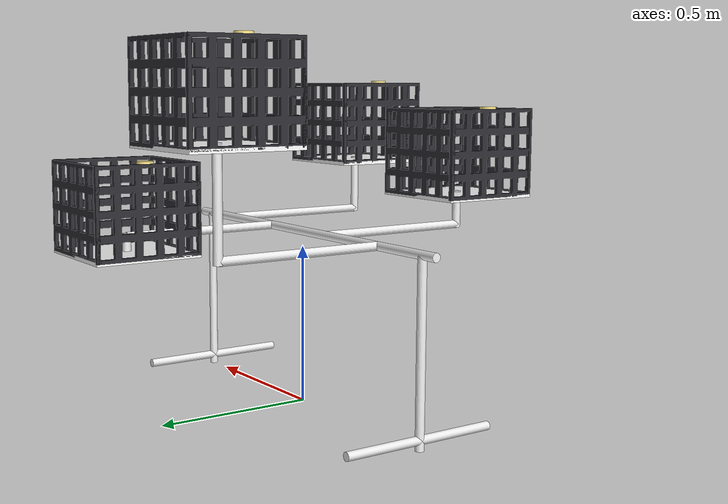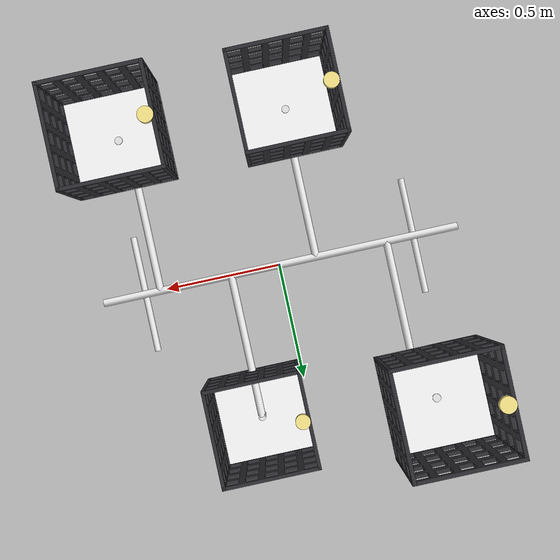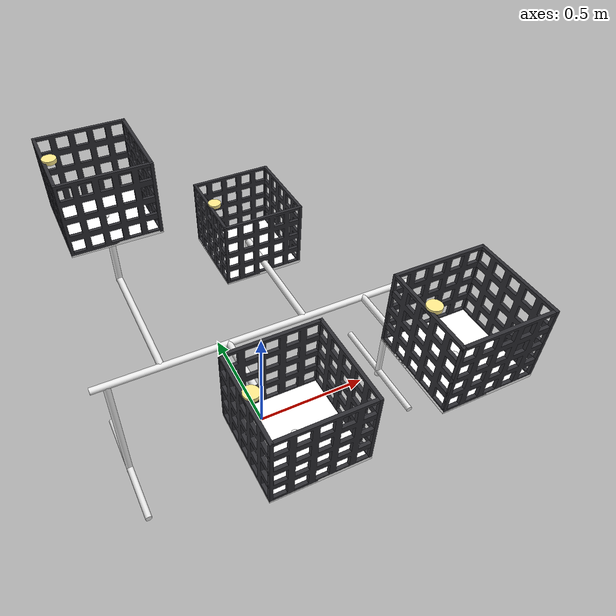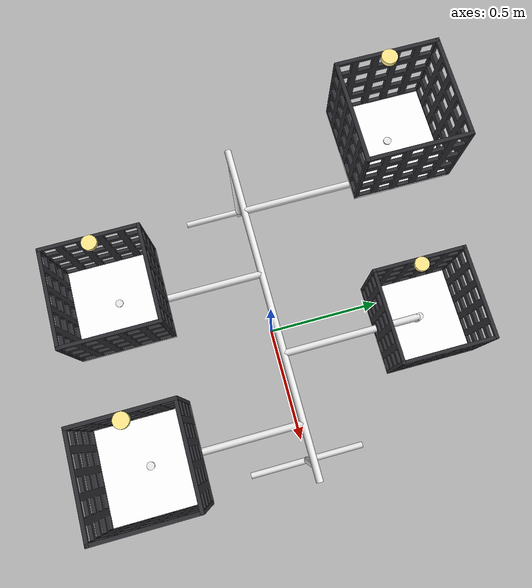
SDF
<?xml version="1.0"?>
<sdf version="1.9">
  <model name="robosub_bins">
    <static>true</static>
    <plugin filename="gz-sim-label-system" name="gz::sim::systems::Label">
      <label>14</label>
    </plugin>
    <link name="spine">
      <pose>0 0 0.55 0 1.5708 0</pose>
      <inertial>
        <pose>0 0 0 0 0 0</pose>
        <mass>1</mass>
        <inertia>
          <ixx>0.140878</ixx><ixy>0</ixy><ixz>0</ixz>
          <iyy>0.140878</iyy><iyz>0</iyz>
          <izz>8.8445e-05</izz>
        </inertia>
      </inertial>
      <visual name="spine_visual">
        <pose>0 0 0 0 0 0</pose>
        <geometry><cylinder><radius>0.0133</radius><length>1.3</length></cylinder></geometry>
        <material>
          <ambient>0.92 0.92 0.92 1</ambient>
          <diffuse>0.92 0.92 0.92 1</diffuse>
          <specular>0.55 0.55 0.55 1</specular>
          <emissive>0.258 0.258 0.258 1</emissive>
          <pbr>
            <metal>
              <albedo_map>model://robosub_textures/albedo_pvc.png</albedo_map>
              <metalness>0.0</metalness>
              <roughness_map>model://robosub_textures/rough_pvc.png</roughness_map>
              <normal_map>model://robosub_textures/norm_pvc.png</normal_map>
            </metal>
          </pbr>
        </material>
      </visual>
      <collision name="spine_collision">
        <pose>0 0 0 0 0 0</pose>
        <geometry><cylinder><radius>0.0133</radius><length>1.3</length></cylinder></geometry>
      </collision>
    </link>
    <link name="foot_riser_0">
      <pose>-0.590909 0 0.275 0 0 0</pose>
      <inertial>
        <pose>0 0 0 0 0 0</pose>
        <mass>1</mass>
        <inertia>
          <ixx>0.0252526</ixx><ixy>0</ixy><ixz>0</ixz>
          <iyy>0.0252526</iyy><iyz>0</iyz>
          <izz>8.8445e-05</izz>
        </inertia>
      </inertial>
      <visual name="foot_riser_0_visual">
        <pose>0 0 0 0 0 0</pose>
        <geometry><cylinder><radius>0.0133</radius><length>0.55</length></cylinder></geometry>
        <material>
          <ambient>0.92 0.92 0.92 1</ambient>
          <diffuse>0.92 0.92 0.92 1</diffuse>
          <specular>0.55 0.55 0.55 1</specular>
          <emissive>0.258 0.258 0.258 1</emissive>
          <pbr>
            <metal>
              <albedo_map>model://robosub_textures/albedo_pvc.png</albedo_map>
              <metalness>0.0</metalness>
              <roughness_map>model://robosub_textures/rough_pvc.png</roughness_map>
              <normal_map>model://robosub_textures/norm_pvc.png</normal_map>
            </metal>
          </pbr>
        </material>
      </visual>
      <collision name="foot_riser_0_collision">
        <pose>0 0 0 0 0 0</pose>
        <geometry><cylinder><radius>0.0133</radius><length>0.55</length></cylinder></geometry>
      </collision>
    </link>
    <link name="foot_0">
      <pose>-0.590909 0 0.03 1.5708 0 0</pose>
      <inertial>
        <pose>0 0 0 0 0 0</pose>
        <mass>1</mass>
        <inertia>
          <ixx>0.0208776</ixx><ixy>0</ixy><ixz>0</ixz>
          <iyy>0.0208776</iyy><iyz>0</iyz>
          <izz>8.8445e-05</izz>
        </inertia>
      </inertial>
      <visual name="foot_0_visual">
        <pose>0 0 0 0 0 0</pose>
        <geometry><cylinder><radius>0.0133</radius><length>0.5</length></cylinder></geometry>
        <material>
          <ambient>0.92 0.92 0.92 1</ambient>
          <diffuse>0.92 0.92 0.92 1</diffuse>
          <specular>0.55 0.55 0.55 1</specular>
          <emissive>0.258 0.258 0.258 1</emissive>
          <pbr>
            <metal>
              <albedo_map>model://robosub_textures/albedo_pvc.png</albedo_map>
              <metalness>0.0</metalness>
              <roughness_map>model://robosub_textures/rough_pvc.png</roughness_map>
              <normal_map>model://robosub_textures/norm_pvc.png</normal_map>
            </metal>
          </pbr>
        </material>
      </visual>
      <collision name="foot_0_collision">
        <pose>0 0 0 0 0 0</pose>
        <geometry><cylinder><radius>0.0133</radius><length>0.5</length></cylinder></geometry>
      </collision>
    </link>
    <link name="foot_riser_1">
      <pose>0.590909 0 0.275 0 0 0</pose>
      <inertial>
        <pose>0 0 0 0 0 0</pose>
        <mass>1</mass>
        <inertia>
          <ixx>0.0252526</ixx><ixy>0</ixy><ixz>0</ixz>
          <iyy>0.0252526</iyy><iyz>0</iyz>
          <izz>8.8445e-05</izz>
        </inertia>
      </inertial>
      <visual name="foot_riser_1_visual">
        <pose>0 0 0 0 0 0</pose>
        <geometry><cylinder><radius>0.0133</radius><length>0.55</length></cylinder></geometry>
        <material>
          <ambient>0.92 0.92 0.92 1</ambient>
          <diffuse>0.92 0.92 0.92 1</diffuse>
          <specular>0.55 0.55 0.55 1</specular>
          <emissive>0.258 0.258 0.258 1</emissive>
          <pbr>
            <metal>
              <albedo_map>model://robosub_textures/albedo_pvc.png</albedo_map>
              <metalness>0.0</metalness>
              <roughness_map>model://robosub_textures/rough_pvc.png</roughness_map>
              <normal_map>model://robosub_textures/norm_pvc.png</normal_map>
            </metal>
          </pbr>
        </material>
      </visual>
      <collision name="foot_riser_1_collision">
        <pose>0 0 0 0 0 0</pose>
        <geometry><cylinder><radius>0.0133</radius><length>0.55</length></cylinder></geometry>
      </collision>
    </link>
    <link name="foot_1">
      <pose>0.590909 0 0.03 1.5708 0 0</pose>
      <inertial>
        <pose>0 0 0 0 0 0</pose>
        <mass>1</mass>
        <inertia>
          <ixx>0.0208776</ixx><ixy>0</ixy><ixz>0</ixz>
          <iyy>0.0208776</iyy><iyz>0</iyz>
          <izz>8.8445e-05</izz>
        </inertia>
      </inertial>
      <visual name="foot_1_visual">
        <pose>0 0 0 0 0 0</pose>
        <geometry><cylinder><radius>0.0133</radius><length>0.5</length></cylinder></geometry>
        <material>
          <ambient>0.92 0.92 0.92 1</ambient>
          <diffuse>0.92 0.92 0.92 1</diffuse>
          <specular>0.55 0.55 0.55 1</specular>
          <emissive>0.258 0.258 0.258 1</emissive>
          <pbr>
            <metal>
              <albedo_map>model://robosub_textures/albedo_pvc.png</albedo_map>
              <metalness>0.0</metalness>
              <roughness_map>model://robosub_textures/rough_pvc.png</roughness_map>
              <normal_map>model://robosub_textures/norm_pvc.png</normal_map>
            </metal>
          </pbr>
        </material>
      </visual>
      <collision name="foot_1_collision">
        <pose>0 0 0 0 0 0</pose>
        <geometry><cylinder><radius>0.0133</radius><length>0.5</length></cylinder></geometry>
      </collision>
    </link>
    <link name="arm_sr_a">
      <pose>-0.39 0.26 0.55 1.5708 0 0</pose>
      <inertial>
        <pose>0 0 0 0 0 0</pose>
        <mass>1</mass>
        <inertia>
          <ixx>0.0225776</ixx><ixy>0</ixy><ixz>0</ixz>
          <iyy>0.0225776</iyy><iyz>0</iyz>
          <izz>8.8445e-05</izz>
        </inertia>
      </inertial>
      <visual name="arm_sr_a_visual">
        <pose>0 0 0 0 0 0</pose>
        <geometry><cylinder><radius>0.0133</radius><length>0.52</length></cylinder></geometry>
        <material>
          <ambient>0.92 0.92 0.92 1</ambient>
          <diffuse>0.92 0.92 0.92 1</diffuse>
          <specular>0.55 0.55 0.55 1</specular>
          <emissive>0.258 0.258 0.258 1</emissive>
          <pbr>
            <metal>
              <albedo_map>model://robosub_textures/albedo_pvc.png</albedo_map>
              <metalness>0.0</metalness>
              <roughness_map>model://robosub_textures/rough_pvc.png</roughness_map>
              <normal_map>model://robosub_textures/norm_pvc.png</normal_map>
            </metal>
          </pbr>
        </material>
      </visual>
      <collision name="arm_sr_a_collision">
        <pose>0 0 0 0 0 0</pose>
        <geometry><cylinder><radius>0.0133</radius><length>0.52</length></cylinder></geometry>
      </collision>
    </link>
    <link name="riser_sr_a">
      <pose>-0.39 0.52 0.7 0 0 0</pose>
      <inertial>
        <pose>0 0 0 0 0 0</pose>
        <mass>1</mass>
        <inertia>
          <ixx>0.00857756</ixx><ixy>0</ixy><ixz>0</ixz>
          <iyy>0.00857756</iyy><iyz>0</iyz>
          <izz>8.8445e-05</izz>
        </inertia>
      </inertial>
      <visual name="riser_sr_a_visual">
        <pose>0 0 0 0 0 0</pose>
        <geometry><cylinder><radius>0.0133</radius><length>0.32</length></cylinder></geometry>
        <material>
          <ambient>0.92 0.92 0.92 1</ambient>
          <diffuse>0.92 0.92 0.92 1</diffuse>
          <specular>0.55 0.55 0.55 1</specular>
          <emissive>0.258 0.258 0.258 1</emissive>
          <pbr>
            <metal>
              <albedo_map>model://robosub_textures/albedo_pvc.png</albedo_map>
              <metalness>0.0</metalness>
              <roughness_map>model://robosub_textures/rough_pvc.png</roughness_map>
              <normal_map>model://robosub_textures/norm_pvc.png</normal_map>
            </metal>
          </pbr>
        </material>
      </visual>
      <collision name="riser_sr_a_collision">
        <pose>0 0 0 0 0 0</pose>
        <geometry><cylinder><radius>0.0133</radius><length>0.32</length></cylinder></geometry>
      </collision>
    </link>
    <link name="crate_sr_a_floor">
      <pose>-0.39 0.52 0.85 0 0 0</pose>
      <inertial>
        <pose>0 0 0 0 0 0</pose>
        <mass>1</mass>
        <inertia>
          <ixx>0.00936408</ixx><ixy>0</ixy><ixz>0</ixz>
          <iyy>0.00936408</iyy><iyz>0</iyz>
          <izz>0.0187042</izz>
        </inertia>
      </inertial>
      <visual name="crate_sr_a_floor_visual">
        <pose>0 0 0 0 0 0</pose>
        <geometry><box><size>0.335 0.335 0.012</size></box></geometry>
        <material>
          <ambient>1 1 1 1</ambient>
          <diffuse>1 1 1 1</diffuse>
          <specular>0.06 0.06 0.06 1</specular>
          <emissive>0.1 0.1 0.1 1</emissive>
          <pbr>
            <metal>
              <albedo_map>model://robosub_textures/role_fire.png</albedo_map>
              <metalness>0.0</metalness>
              <roughness>0.55</roughness>
            </metal>
          </pbr>
        </material>
      </visual>
      <collision name="crate_sr_a_floor_collision">
        <pose>0 0 0 0 0 0</pose>
        <geometry><box><size>0.335 0.335 0.012</size></box></geometry>
      </collision>
    </link>
    <link name="crate_sr_a_xp">
      <pose>-0.2285 0.52 0.99 0 0 0</pose>
      <inertial>
        <pose>0 0 0 0 0 0</pose>
        <mass>0.5</mass>
        <inertia>
          <ixx>0.00794271</ixx><ixy>0</ixy><ixz>0</ixz>
          <iyy>0.00327267</iyy><iyz>0</iyz>
          <izz>0.00468204</izz>
        </inertia>
      </inertial>
      <visual name="crate_sr_a_xp_visual">
        <pose>0 0 0 0 0 0</pose>
        <geometry><mesh><uri>model://robosub_meshes/meshes/crate_wall.obj</uri></mesh></geometry>
        <material>
          <ambient>0.18 0.18 0.2 1</ambient>
          <diffuse>0.18 0.18 0.2 1</diffuse>
          <specular>0.14 0.14 0.14 1</specular>
          <emissive>0.04 0.04 0.04 1</emissive>
          <pbr>
            <metal>
              <albedo_map>model://robosub_textures/albedo_plastic.png</albedo_map>
              <metalness>0.0</metalness>
              <roughness_map>model://robosub_textures/rough_plastic.png</roughness_map>
              <normal_map>model://robosub_textures/norm_plastic.png</normal_map>
              <double_sided>true</double_sided>
            </metal>
          </pbr>
        </material>
      </visual>
      <collision name="crate_sr_a_xp_collision">
        <pose>0 0 0 0 0 0</pose>
        <geometry><box><size>0.012 0.335 0.28</size></box></geometry>
      </collision>
    </link>
    <link name="crate_sr_a_xn">
      <pose>-0.5515 0.52 0.99 0 0 0</pose>
      <inertial>
        <pose>0 0 0 0 0 0</pose>
        <mass>0.5</mass>
        <inertia>
          <ixx>0.00794271</ixx><ixy>0</ixy><ixz>0</ixz>
          <iyy>0.00327267</iyy><iyz>0</iyz>
          <izz>0.00468204</izz>
        </inertia>
      </inertial>
      <visual name="crate_sr_a_xn_visual">
        <pose>0 0 0 0 0 0</pose>
        <geometry><mesh><uri>model://robosub_meshes/meshes/crate_wall.obj</uri></mesh></geometry>
        <material>
          <ambient>0.18 0.18 0.2 1</ambient>
          <diffuse>0.18 0.18 0.2 1</diffuse>
          <specular>0.14 0.14 0.14 1</specular>
          <emissive>0.04 0.04 0.04 1</emissive>
          <pbr>
            <metal>
              <albedo_map>model://robosub_textures/albedo_plastic.png</albedo_map>
              <metalness>0.0</metalness>
              <roughness_map>model://robosub_textures/rough_plastic.png</roughness_map>
              <normal_map>model://robosub_textures/norm_plastic.png</normal_map>
              <double_sided>true</double_sided>
            </metal>
          </pbr>
        </material>
      </visual>
      <collision name="crate_sr_a_xn_collision">
        <pose>0 0 0 0 0 0</pose>
        <geometry><box><size>0.012 0.335 0.28</size></box></geometry>
      </collision>
    </link>
    <link name="crate_sr_a_yp">
      <pose>-0.39 0.6815 0.99 0 0 1.5708</pose>
      <inertial>
        <pose>0 0 0 0 0 0</pose>
        <mass>0.5</mass>
        <inertia>
          <ixx>0.00327267</ixx><ixy>0</ixy><ixz>0</ixz>
          <iyy>0.00794271</iyy><iyz>0</iyz>
          <izz>0.00468204</izz>
        </inertia>
      </inertial>
      <visual name="crate_sr_a_yp_visual">
        <pose>0 0 0 0 0 0</pose>
        <geometry><mesh><uri>model://robosub_meshes/meshes/crate_wall.obj</uri></mesh></geometry>
        <material>
          <ambient>0.18 0.18 0.2 1</ambient>
          <diffuse>0.18 0.18 0.2 1</diffuse>
          <specular>0.14 0.14 0.14 1</specular>
          <emissive>0.04 0.04 0.04 1</emissive>
          <pbr>
            <metal>
              <albedo_map>model://robosub_textures/albedo_plastic.png</albedo_map>
              <metalness>0.0</metalness>
              <roughness_map>model://robosub_textures/rough_plastic.png</roughness_map>
              <normal_map>model://robosub_textures/norm_plastic.png</normal_map>
              <double_sided>true</double_sided>
            </metal>
          </pbr>
        </material>
      </visual>
      <collision name="crate_sr_a_yp_collision">
        <pose>0 0 0 0 0 0</pose>
        <geometry><box><size>0.335 0.012 0.28</size></box></geometry>
      </collision>
    </link>
    <link name="crate_sr_a_yn">
      <pose>-0.39 0.3585 0.99 0 0 1.5708</pose>
      <inertial>
        <pose>0 0 0 0 0 0</pose>
        <mass>0.5</mass>
        <inertia>
          <ixx>0.00327267</ixx><ixy>0</ixy><ixz>0</ixz>
          <iyy>0.00794271</iyy><iyz>0</iyz>
          <izz>0.00468204</izz>
        </inertia>
      </inertial>
      <visual name="crate_sr_a_yn_visual">
        <pose>0 0 0 0 0 0</pose>
        <geometry><mesh><uri>model://robosub_meshes/meshes/crate_wall.obj</uri></mesh></geometry>
        <material>
          <ambient>0.18 0.18 0.2 1</ambient>
          <diffuse>0.18 0.18 0.2 1</diffuse>
          <specular>0.14 0.14 0.14 1</specular>
          <emissive>0.04 0.04 0.04 1</emissive>
          <pbr>
            <metal>
              <albedo_map>model://robosub_textures/albedo_plastic.png</albedo_map>
              <metalness>0.0</metalness>
              <roughness_map>model://robosub_textures/rough_plastic.png</roughness_map>
              <normal_map>model://robosub_textures/norm_plastic.png</normal_map>
              <double_sided>true</double_sided>
            </metal>
          </pbr>
        </material>
      </visual>
      <collision name="crate_sr_a_yn_collision">
        <pose>0 0 0 0 0 0</pose>
        <geometry><box><size>0.335 0.012 0.28</size></box></geometry>
      </collision>
    </link>
    <link name="light_sr_a">
      <pose>-0.5309 0.52 1.13 0 0 0</pose>
      <inertial>
        <pose>0 0 0 0 0 0</pose>
        <mass>0.05</mass>
        <inertia>
          <ixx>8.79883e-06</ixx><ixy>0</ixy><ixz>0</ixz>
          <iyy>8.79883e-06</iyy><iyz>0</iyz>
          <izz>1.59643e-05</izz>
        </inertia>
      </inertial>
      <visual name="light_sr_a_visual">
        <pose>0 0 0 0 0 0</pose>
        <geometry><cylinder><radius>0.02527</radius><length>0.014</length></cylinder></geometry>
        <material>
          <ambient>1 0.92 0.55 1</ambient>
          <diffuse>1 0.92 0.55 1</diffuse>
          <specular>0.2 0.2 0.2 1</specular>
          <emissive>0.85 0.782 0.4675 1</emissive>
        </material>
      </visual>
    </link>
    <link name="arm_rescue_a">
      <pose>-0.13 -0.26 0.55 1.5708 0 0</pose>
      <inertial>
        <pose>0 0 0 0 0 0</pose>
        <mass>1</mass>
        <inertia>
          <ixx>0.0225776</ixx><ixy>0</ixy><ixz>0</ixz>
          <iyy>0.0225776</iyy><iyz>0</iyz>
          <izz>8.8445e-05</izz>
        </inertia>
      </inertial>
      <visual name="arm_rescue_a_visual">
        <pose>0 0 0 0 0 0</pose>
        <geometry><cylinder><radius>0.0133</radius><length>0.52</length></cylinder></geometry>
        <material>
          <ambient>0.92 0.92 0.92 1</ambient>
          <diffuse>0.92 0.92 0.92 1</diffuse>
          <specular>0.55 0.55 0.55 1</specular>
          <emissive>0.258 0.258 0.258 1</emissive>
          <pbr>
            <metal>
              <albedo_map>model://robosub_textures/albedo_pvc.png</albedo_map>
              <metalness>0.0</metalness>
              <roughness_map>model://robosub_textures/rough_pvc.png</roughness_map>
              <normal_map>model://robosub_textures/norm_pvc.png</normal_map>
            </metal>
          </pbr>
        </material>
      </visual>
      <collision name="arm_rescue_a_collision">
        <pose>0 0 0 0 0 0</pose>
        <geometry><cylinder><radius>0.0133</radius><length>0.52</length></cylinder></geometry>
      </collision>
    </link>
    <link name="riser_rescue_a">
      <pose>-0.13 -0.52 0.6 0 0 0</pose>
      <inertial>
        <pose>0 0 0 0 0 0</pose>
        <mass>1</mass>
        <inertia>
          <ixx>0.00124422</ixx><ixy>0</ixy><ixz>0</ixz>
          <iyy>0.00124422</iyy><iyz>0</iyz>
          <izz>8.8445e-05</izz>
        </inertia>
      </inertial>
      <visual name="riser_rescue_a_visual">
        <pose>0 0 0 0 0 0</pose>
        <geometry><cylinder><radius>0.0133</radius><length>0.12</length></cylinder></geometry>
        <material>
          <ambient>0.92 0.92 0.92 1</ambient>
          <diffuse>0.92 0.92 0.92 1</diffuse>
          <specular>0.55 0.55 0.55 1</specular>
          <emissive>0.258 0.258 0.258 1</emissive>
          <pbr>
            <metal>
              <albedo_map>model://robosub_textures/albedo_pvc.png</albedo_map>
              <metalness>0.0</metalness>
              <roughness_map>model://robosub_textures/rough_pvc.png</roughness_map>
              <normal_map>model://robosub_textures/norm_pvc.png</normal_map>
            </metal>
          </pbr>
        </material>
      </visual>
      <collision name="riser_rescue_a_collision">
        <pose>0 0 0 0 0 0</pose>
        <geometry><cylinder><radius>0.0133</radius><length>0.12</length></cylinder></geometry>
      </collision>
    </link>
    <link name="crate_rescue_a_floor">
      <pose>-0.13 -0.52 0.65 0 0 0</pose>
      <inertial>
        <pose>0 0 0 0 0 0</pose>
        <mass>1</mass>
        <inertia>
          <ixx>0.00936408</ixx><ixy>0</ixy><ixz>0</ixz>
          <iyy>0.00936408</iyy><iyz>0</iyz>
          <izz>0.0187042</izz>
        </inertia>
      </inertial>
      <visual name="crate_rescue_a_floor_visual">
        <pose>0 0 0 0 0 0</pose>
        <geometry><box><size>0.335 0.335 0.012</size></box></geometry>
        <material>
          <ambient>1 1 1 1</ambient>
          <diffuse>1 1 1 1</diffuse>
          <specular>0.06 0.06 0.06 1</specular>
          <emissive>0.1 0.1 0.1 1</emissive>
          <pbr>
            <metal>
              <albedo_map>model://robosub_textures/role_droplet.png</albedo_map>
              <metalness>0.0</metalness>
              <roughness>0.55</roughness>
            </metal>
          </pbr>
        </material>
      </visual>
      <collision name="crate_rescue_a_floor_collision">
        <pose>0 0 0 0 0 0</pose>
        <geometry><box><size>0.335 0.335 0.012</size></box></geometry>
      </collision>
    </link>
    <link name="crate_rescue_a_xp">
      <pose>0.0315 -0.52 0.79 0 0 0</pose>
      <inertial>
        <pose>0 0 0 0 0 0</pose>
        <mass>0.5</mass>
        <inertia>
          <ixx>0.00794271</ixx><ixy>0</ixy><ixz>0</ixz>
          <iyy>0.00327267</iyy><iyz>0</iyz>
          <izz>0.00468204</izz>
        </inertia>
      </inertial>
      <visual name="crate_rescue_a_xp_visual">
        <pose>0 0 0 0 0 0</pose>
        <geometry><mesh><uri>model://robosub_meshes/meshes/crate_wall.obj</uri></mesh></geometry>
        <material>
          <ambient>0.18 0.18 0.2 1</ambient>
          <diffuse>0.18 0.18 0.2 1</diffuse>
          <specular>0.14 0.14 0.14 1</specular>
          <emissive>0.04 0.04 0.04 1</emissive>
          <pbr>
            <metal>
              <albedo_map>model://robosub_textures/albedo_plastic.png</albedo_map>
              <metalness>0.0</metalness>
              <roughness_map>model://robosub_textures/rough_plastic.png</roughness_map>
              <normal_map>model://robosub_textures/norm_plastic.png</normal_map>
              <double_sided>true</double_sided>
            </metal>
          </pbr>
        </material>
      </visual>
      <collision name="crate_rescue_a_xp_collision">
        <pose>0 0 0 0 0 0</pose>
        <geometry><box><size>0.012 0.335 0.28</size></box></geometry>
      </collision>
    </link>
    <link name="crate_rescue_a_xn">
      <pose>-0.2915 -0.52 0.79 0 0 0</pose>
      <inertial>
        <pose>0 0 0 0 0 0</pose>
        <mass>0.5</mass>
        <inertia>
          <ixx>0.00794271</ixx><ixy>0</ixy><ixz>0</ixz>
          <iyy>0.00327267</iyy><iyz>0</iyz>
          <izz>0.00468204</izz>
        </inertia>
      </inertial>
      <visual name="crate_rescue_a_xn_visual">
        <pose>0 0 0 0 0 0</pose>
        <geometry><mesh><uri>model://robosub_meshes/meshes/crate_wall.obj</uri></mesh></geometry>
        <material>
          <ambient>0.18 0.18 0.2 1</ambient>
          <diffuse>0.18 0.18 0.2 1</diffuse>
          <specular>0.14 0.14 0.14 1</specular>
          <emissive>0.04 0.04 0.04 1</emissive>
          <pbr>
            <metal>
              <albedo_map>model://robosub_textures/albedo_plastic.png</albedo_map>
              <metalness>0.0</metalness>
              <roughness_map>model://robosub_textures/rough_plastic.png</roughness_map>
              <normal_map>model://robosub_textures/norm_plastic.png</normal_map>
              <double_sided>true</double_sided>
            </metal>
          </pbr>
        </material>
      </visual>
      <collision name="crate_rescue_a_xn_collision">
        <pose>0 0 0 0 0 0</pose>
        <geometry><box><size>0.012 0.335 0.28</size></box></geometry>
      </collision>
    </link>
    <link name="crate_rescue_a_yp">
      <pose>-0.13 -0.3585 0.79 0 0 1.5708</pose>
      <inertial>
        <pose>0 0 0 0 0 0</pose>
        <mass>0.5</mass>
        <inertia>
          <ixx>0.00327267</ixx><ixy>0</ixy><ixz>0</ixz>
          <iyy>0.00794271</iyy><iyz>0</iyz>
          <izz>0.00468204</izz>
        </inertia>
      </inertial>
      <visual name="crate_rescue_a_yp_visual">
        <pose>0 0 0 0 0 0</pose>
        <geometry><mesh><uri>model://robosub_meshes/meshes/crate_wall.obj</uri></mesh></geometry>
        <material>
          <ambient>0.18 0.18 0.2 1</ambient>
          <diffuse>0.18 0.18 0.2 1</diffuse>
          <specular>0.14 0.14 0.14 1</specular>
          <emissive>0.04 0.04 0.04 1</emissive>
          <pbr>
            <metal>
              <albedo_map>model://robosub_textures/albedo_plastic.png</albedo_map>
              <metalness>0.0</metalness>
              <roughness_map>model://robosub_textures/rough_plastic.png</roughness_map>
              <normal_map>model://robosub_textures/norm_plastic.png</normal_map>
              <double_sided>true</double_sided>
            </metal>
          </pbr>
        </material>
      </visual>
      <collision name="crate_rescue_a_yp_collision">
        <pose>0 0 0 0 0 0</pose>
        <geometry><box><size>0.335 0.012 0.28</size></box></geometry>
      </collision>
    </link>
    <link name="crate_rescue_a_yn">
      <pose>-0.13 -0.6815 0.79 0 0 1.5708</pose>
      <inertial>
        <pose>0 0 0 0 0 0</pose>
        <mass>0.5</mass>
        <inertia>
          <ixx>0.00327267</ixx><ixy>0</ixy><ixz>0</ixz>
          <iyy>0.00794271</iyy><iyz>0</iyz>
          <izz>0.00468204</izz>
        </inertia>
      </inertial>
      <visual name="crate_rescue_a_yn_visual">
        <pose>0 0 0 0 0 0</pose>
        <geometry><mesh><uri>model://robosub_meshes/meshes/crate_wall.obj</uri></mesh></geometry>
        <material>
          <ambient>0.18 0.18 0.2 1</ambient>
          <diffuse>0.18 0.18 0.2 1</diffuse>
          <specular>0.14 0.14 0.14 1</specular>
          <emissive>0.04 0.04 0.04 1</emissive>
          <pbr>
            <metal>
              <albedo_map>model://robosub_textures/albedo_plastic.png</albedo_map>
              <metalness>0.0</metalness>
              <roughness_map>model://robosub_textures/rough_plastic.png</roughness_map>
              <normal_map>model://robosub_textures/norm_plastic.png</normal_map>
              <double_sided>true</double_sided>
            </metal>
          </pbr>
        </material>
      </visual>
      <collision name="crate_rescue_a_yn_collision">
        <pose>0 0 0 0 0 0</pose>
        <geometry><box><size>0.335 0.012 0.28</size></box></geometry>
      </collision>
    </link>
    <link name="light_rescue_a">
      <pose>-0.2709 -0.52 0.93 0 0 0</pose>
      <inertial>
        <pose>0 0 0 0 0 0</pose>
        <mass>0.05</mass>
        <inertia>
          <ixx>8.79883e-06</ixx><ixy>0</ixy><ixz>0</ixz>
          <iyy>8.79883e-06</iyy><iyz>0</iyz>
          <izz>1.59643e-05</izz>
        </inertia>
      </inertial>
      <visual name="light_rescue_a_visual">
        <pose>0 0 0 0 0 0</pose>
        <geometry><cylinder><radius>0.02527</radius><length>0.014</length></cylinder></geometry>
        <material>
          <ambient>1 0.92 0.55 1</ambient>
          <diffuse>1 0.92 0.55 1</diffuse>
          <specular>0.2 0.2 0.2 1</specular>
          <emissive>0.85 0.782 0.4675 1</emissive>
        </material>
      </visual>
    </link>
    <link name="arm_sr_b">
      <pose>0.182 0.26 0.55 1.5708 0 0</pose>
      <inertial>
        <pose>0 0 0 0 0 0</pose>
        <mass>1</mass>
        <inertia>
          <ixx>0.0225776</ixx><ixy>0</ixy><ixz>0</ixz>
          <iyy>0.0225776</iyy><iyz>0</iyz>
          <izz>8.8445e-05</izz>
        </inertia>
      </inertial>
      <visual name="arm_sr_b_visual">
        <pose>0 0 0 0 0 0</pose>
        <geometry><cylinder><radius>0.0133</radius><length>0.52</length></cylinder></geometry>
        <material>
          <ambient>0.92 0.92 0.92 1</ambient>
          <diffuse>0.92 0.92 0.92 1</diffuse>
          <specular>0.55 0.55 0.55 1</specular>
          <emissive>0.258 0.258 0.258 1</emissive>
          <pbr>
            <metal>
              <albedo_map>model://robosub_textures/albedo_pvc.png</albedo_map>
              <metalness>0.0</metalness>
              <roughness_map>model://robosub_textures/rough_pvc.png</roughness_map>
              <normal_map>model://robosub_textures/norm_pvc.png</normal_map>
            </metal>
          </pbr>
        </material>
      </visual>
      <collision name="arm_sr_b_collision">
        <pose>0 0 0 0 0 0</pose>
        <geometry><cylinder><radius>0.0133</radius><length>0.52</length></cylinder></geometry>
      </collision>
    </link>
    <link name="riser_sr_b">
      <pose>0.182 0.52 0.525 0 0 0</pose>
      <inertial>
        <pose>0 0 0 0 0 0</pose>
        <mass>1</mass>
        <inertia>
          <ixx>0.000452556</ixx><ixy>0</ixy><ixz>0</ixz>
          <iyy>0.000452556</iyy><iyz>0</iyz>
          <izz>8.8445e-05</izz>
        </inertia>
      </inertial>
      <visual name="riser_sr_b_visual">
        <pose>0 0 0 0 0 0</pose>
        <geometry><cylinder><radius>0.0133</radius><length>0.07</length></cylinder></geometry>
        <material>
          <ambient>0.92 0.92 0.92 1</ambient>
          <diffuse>0.92 0.92 0.92 1</diffuse>
          <specular>0.55 0.55 0.55 1</specular>
          <emissive>0.258 0.258 0.258 1</emissive>
          <pbr>
            <metal>
              <albedo_map>model://robosub_textures/albedo_pvc.png</albedo_map>
              <metalness>0.0</metalness>
              <roughness_map>model://robosub_textures/rough_pvc.png</roughness_map>
              <normal_map>model://robosub_textures/norm_pvc.png</normal_map>
            </metal>
          </pbr>
        </material>
      </visual>
      <collision name="riser_sr_b_collision">
        <pose>0 0 0 0 0 0</pose>
        <geometry><cylinder><radius>0.0133</radius><length>0.07</length></cylinder></geometry>
      </collision>
    </link>
    <link name="crate_sr_b_floor">
      <pose>0.182 0.52 0.5 0 0 0</pose>
      <inertial>
        <pose>0 0 0 0 0 0</pose>
        <mass>1</mass>
        <inertia>
          <ixx>0.00936408</ixx><ixy>0</ixy><ixz>0</ixz>
          <iyy>0.00936408</iyy><iyz>0</iyz>
          <izz>0.0187042</izz>
        </inertia>
      </inertial>
      <visual name="crate_sr_b_floor_visual">
        <pose>0 0 0 0 0 0</pose>
        <geometry><box><size>0.335 0.335 0.012</size></box></geometry>
        <material>
          <ambient>1 1 1 1</ambient>
          <diffuse>1 1 1 1</diffuse>
          <specular>0.06 0.06 0.06 1</specular>
          <emissive>0.1 0.1 0.1 1</emissive>
          <pbr>
            <metal>
              <albedo_map>model://robosub_textures/role_fire.png</albedo_map>
              <metalness>0.0</metalness>
              <roughness>0.55</roughness>
            </metal>
          </pbr>
        </material>
      </visual>
      <collision name="crate_sr_b_floor_collision">
        <pose>0 0 0 0 0 0</pose>
        <geometry><box><size>0.335 0.335 0.012</size></box></geometry>
      </collision>
    </link>
    <link name="crate_sr_b_xp">
      <pose>0.3435 0.52 0.64 0 0 0</pose>
      <inertial>
        <pose>0 0 0 0 0 0</pose>
        <mass>0.5</mass>
        <inertia>
          <ixx>0.00794271</ixx><ixy>0</ixy><ixz>0</ixz>
          <iyy>0.00327267</iyy><iyz>0</iyz>
          <izz>0.00468204</izz>
        </inertia>
      </inertial>
      <visual name="crate_sr_b_xp_visual">
        <pose>0 0 0 0 0 0</pose>
        <geometry><mesh><uri>model://robosub_meshes/meshes/crate_wall.obj</uri></mesh></geometry>
        <material>
          <ambient>0.18 0.18 0.2 1</ambient>
          <diffuse>0.18 0.18 0.2 1</diffuse>
          <specular>0.14 0.14 0.14 1</specular>
          <emissive>0.04 0.04 0.04 1</emissive>
          <pbr>
            <metal>
              <albedo_map>model://robosub_textures/albedo_plastic.png</albedo_map>
              <metalness>0.0</metalness>
              <roughness_map>model://robosub_textures/rough_plastic.png</roughness_map>
              <normal_map>model://robosub_textures/norm_plastic.png</normal_map>
              <double_sided>true</double_sided>
            </metal>
          </pbr>
        </material>
      </visual>
      <collision name="crate_sr_b_xp_collision">
        <pose>0 0 0 0 0 0</pose>
        <geometry><box><size>0.012 0.335 0.28</size></box></geometry>
      </collision>
    </link>
    <link name="crate_sr_b_xn">
      <pose>0.0205 0.52 0.64 0 0 0</pose>
      <inertial>
        <pose>0 0 0 0 0 0</pose>
        <mass>0.5</mass>
        <inertia>
          <ixx>0.00794271</ixx><ixy>0</ixy><ixz>0</ixz>
          <iyy>0.00327267</iyy><iyz>0</iyz>
          <izz>0.00468204</izz>
        </inertia>
      </inertial>
      <visual name="crate_sr_b_xn_visual">
        <pose>0 0 0 0 0 0</pose>
        <geometry><mesh><uri>model://robosub_meshes/meshes/crate_wall.obj</uri></mesh></geometry>
        <material>
          <ambient>0.18 0.18 0.2 1</ambient>
          <diffuse>0.18 0.18 0.2 1</diffuse>
          <specular>0.14 0.14 0.14 1</specular>
          <emissive>0.04 0.04 0.04 1</emissive>
          <pbr>
            <metal>
              <albedo_map>model://robosub_textures/albedo_plastic.png</albedo_map>
              <metalness>0.0</metalness>
              <roughness_map>model://robosub_textures/rough_plastic.png</roughness_map>
              <normal_map>model://robosub_textures/norm_plastic.png</normal_map>
              <double_sided>true</double_sided>
            </metal>
          </pbr>
        </material>
      </visual>
      <collision name="crate_sr_b_xn_collision">
        <pose>0 0 0 0 0 0</pose>
        <geometry><box><size>0.012 0.335 0.28</size></box></geometry>
      </collision>
    </link>
    <link name="crate_sr_b_yp">
      <pose>0.182 0.6815 0.64 0 0 1.5708</pose>
      <inertial>
        <pose>0 0 0 0 0 0</pose>
        <mass>0.5</mass>
        <inertia>
          <ixx>0.00327267</ixx><ixy>0</ixy><ixz>0</ixz>
          <iyy>0.00794271</iyy><iyz>0</iyz>
          <izz>0.00468204</izz>
        </inertia>
      </inertial>
      <visual name="crate_sr_b_yp_visual">
        <pose>0 0 0 0 0 0</pose>
        <geometry><mesh><uri>model://robosub_meshes/meshes/crate_wall.obj</uri></mesh></geometry>
        <material>
          <ambient>0.18 0.18 0.2 1</ambient>
          <diffuse>0.18 0.18 0.2 1</diffuse>
          <specular>0.14 0.14 0.14 1</specular>
          <emissive>0.04 0.04 0.04 1</emissive>
          <pbr>
            <metal>
              <albedo_map>model://robosub_textures/albedo_plastic.png</albedo_map>
              <metalness>0.0</metalness>
              <roughness_map>model://robosub_textures/rough_plastic.png</roughness_map>
              <normal_map>model://robosub_textures/norm_plastic.png</normal_map>
              <double_sided>true</double_sided>
            </metal>
          </pbr>
        </material>
      </visual>
      <collision name="crate_sr_b_yp_collision">
        <pose>0 0 0 0 0 0</pose>
        <geometry><box><size>0.335 0.012 0.28</size></box></geometry>
      </collision>
    </link>
    <link name="crate_sr_b_yn">
      <pose>0.182 0.3585 0.64 0 0 1.5708</pose>
      <inertial>
        <pose>0 0 0 0 0 0</pose>
        <mass>0.5</mass>
        <inertia>
          <ixx>0.00327267</ixx><ixy>0</ixy><ixz>0</ixz>
          <iyy>0.00794271</iyy><iyz>0</iyz>
          <izz>0.00468204</izz>
        </inertia>
      </inertial>
      <visual name="crate_sr_b_yn_visual">
        <pose>0 0 0 0 0 0</pose>
        <geometry><mesh><uri>model://robosub_meshes/meshes/crate_wall.obj</uri></mesh></geometry>
        <material>
          <ambient>0.18 0.18 0.2 1</ambient>
          <diffuse>0.18 0.18 0.2 1</diffuse>
          <specular>0.14 0.14 0.14 1</specular>
          <emissive>0.04 0.04 0.04 1</emissive>
          <pbr>
            <metal>
              <albedo_map>model://robosub_textures/albedo_plastic.png</albedo_map>
              <metalness>0.0</metalness>
              <roughness_map>model://robosub_textures/rough_plastic.png</roughness_map>
              <normal_map>model://robosub_textures/norm_plastic.png</normal_map>
              <double_sided>true</double_sided>
            </metal>
          </pbr>
        </material>
      </visual>
      <collision name="crate_sr_b_yn_collision">
        <pose>0 0 0 0 0 0</pose>
        <geometry><box><size>0.335 0.012 0.28</size></box></geometry>
      </collision>
    </link>
    <link name="light_sr_b">
      <pose>0.0411 0.52 0.78 0 0 0</pose>
      <inertial>
        <pose>0 0 0 0 0 0</pose>
        <mass>0.05</mass>
        <inertia>
          <ixx>8.79883e-06</ixx><ixy>0</ixy><ixz>0</ixz>
          <iyy>8.79883e-06</iyy><iyz>0</iyz>
          <izz>1.59643e-05</izz>
        </inertia>
      </inertial>
      <visual name="light_sr_b_visual">
        <pose>0 0 0 0 0 0</pose>
        <geometry><cylinder><radius>0.02527</radius><length>0.014</length></cylinder></geometry>
        <material>
          <ambient>1 0.92 0.55 1</ambient>
          <diffuse>1 0.92 0.55 1</diffuse>
          <specular>0.2 0.2 0.2 1</specular>
          <emissive>0.85 0.782 0.4675 1</emissive>
        </material>
      </visual>
    </link>
    <link name="arm_rescue_b">
      <pose>0.442 -0.26 0.55 1.5708 0 0</pose>
      <inertial>
        <pose>0 0 0 0 0 0</pose>
        <mass>1</mass>
        <inertia>
          <ixx>0.0225776</ixx><ixy>0</ixy><ixz>0</ixz>
          <iyy>0.0225776</iyy><iyz>0</iyz>
          <izz>8.8445e-05</izz>
        </inertia>
      </inertial>
      <visual name="arm_rescue_b_visual">
        <pose>0 0 0 0 0 0</pose>
        <geometry><cylinder><radius>0.0133</radius><length>0.52</length></cylinder></geometry>
        <material>
          <ambient>0.92 0.92 0.92 1</ambient>
          <diffuse>0.92 0.92 0.92 1</diffuse>
          <specular>0.55 0.55 0.55 1</specular>
          <emissive>0.258 0.258 0.258 1</emissive>
          <pbr>
            <metal>
              <albedo_map>model://robosub_textures/albedo_pvc.png</albedo_map>
              <metalness>0.0</metalness>
              <roughness_map>model://robosub_textures/rough_pvc.png</roughness_map>
              <normal_map>model://robosub_textures/norm_pvc.png</normal_map>
            </metal>
          </pbr>
        </material>
      </visual>
      <collision name="arm_rescue_b_collision">
        <pose>0 0 0 0 0 0</pose>
        <geometry><cylinder><radius>0.0133</radius><length>0.52</length></cylinder></geometry>
      </collision>
    </link>
    <link name="riser_rescue_b">
      <pose>0.442 -0.52 0.64 0 0 0</pose>
      <inertial>
        <pose>0 0 0 0 0 0</pose>
        <mass>1</mass>
        <inertia>
          <ixx>0.00337756</ixx><ixy>0</ixy><ixz>0</ixz>
          <iyy>0.00337756</iyy><iyz>0</iyz>
          <izz>8.8445e-05</izz>
        </inertia>
      </inertial>
      <visual name="riser_rescue_b_visual">
        <pose>0 0 0 0 0 0</pose>
        <geometry><cylinder><radius>0.0133</radius><length>0.2</length></cylinder></geometry>
        <material>
          <ambient>0.92 0.92 0.92 1</ambient>
          <diffuse>0.92 0.92 0.92 1</diffuse>
          <specular>0.55 0.55 0.55 1</specular>
          <emissive>0.258 0.258 0.258 1</emissive>
          <pbr>
            <metal>
              <albedo_map>model://robosub_textures/albedo_pvc.png</albedo_map>
              <metalness>0.0</metalness>
              <roughness_map>model://robosub_textures/rough_pvc.png</roughness_map>
              <normal_map>model://robosub_textures/norm_pvc.png</normal_map>
            </metal>
          </pbr>
        </material>
      </visual>
      <collision name="riser_rescue_b_collision">
        <pose>0 0 0 0 0 0</pose>
        <geometry><cylinder><radius>0.0133</radius><length>0.2</length></cylinder></geometry>
      </collision>
    </link>
    <link name="crate_rescue_b_floor">
      <pose>0.442 -0.52 0.73 0 0 0</pose>
      <inertial>
        <pose>0 0 0 0 0 0</pose>
        <mass>1</mass>
        <inertia>
          <ixx>0.00936408</ixx><ixy>0</ixy><ixz>0</ixz>
          <iyy>0.00936408</iyy><iyz>0</iyz>
          <izz>0.0187042</izz>
        </inertia>
      </inertial>
      <visual name="crate_rescue_b_floor_visual">
        <pose>0 0 0 0 0 0</pose>
        <geometry><box><size>0.335 0.335 0.012</size></box></geometry>
        <material>
          <ambient>1 1 1 1</ambient>
          <diffuse>1 1 1 1</diffuse>
          <specular>0.06 0.06 0.06 1</specular>
          <emissive>0.1 0.1 0.1 1</emissive>
          <pbr>
            <metal>
              <albedo_map>model://robosub_textures/role_droplet.png</albedo_map>
              <metalness>0.0</metalness>
              <roughness>0.55</roughness>
            </metal>
          </pbr>
        </material>
      </visual>
      <collision name="crate_rescue_b_floor_collision">
        <pose>0 0 0 0 0 0</pose>
        <geometry><box><size>0.335 0.335 0.012</size></box></geometry>
      </collision>
    </link>
    <link name="crate_rescue_b_xp">
      <pose>0.6035 -0.52 0.87 0 0 0</pose>
      <inertial>
        <pose>0 0 0 0 0 0</pose>
        <mass>0.5</mass>
        <inertia>
          <ixx>0.00794271</ixx><ixy>0</ixy><ixz>0</ixz>
          <iyy>0.00327267</iyy><iyz>0</iyz>
          <izz>0.00468204</izz>
        </inertia>
      </inertial>
      <visual name="crate_rescue_b_xp_visual">
        <pose>0 0 0 0 0 0</pose>
        <geometry><mesh><uri>model://robosub_meshes/meshes/crate_wall.obj</uri></mesh></geometry>
        <material>
          <ambient>0.18 0.18 0.2 1</ambient>
          <diffuse>0.18 0.18 0.2 1</diffuse>
          <specular>0.14 0.14 0.14 1</specular>
          <emissive>0.04 0.04 0.04 1</emissive>
          <pbr>
            <metal>
              <albedo_map>model://robosub_textures/albedo_plastic.png</albedo_map>
              <metalness>0.0</metalness>
              <roughness_map>model://robosub_textures/rough_plastic.png</roughness_map>
              <normal_map>model://robosub_textures/norm_plastic.png</normal_map>
              <double_sided>true</double_sided>
            </metal>
          </pbr>
        </material>
      </visual>
      <collision name="crate_rescue_b_xp_collision">
        <pose>0 0 0 0 0 0</pose>
        <geometry><box><size>0.012 0.335 0.28</size></box></geometry>
      </collision>
    </link>
    <link name="crate_rescue_b_xn">
      <pose>0.2805 -0.52 0.87 0 0 0</pose>
      <inertial>
        <pose>0 0 0 0 0 0</pose>
        <mass>0.5</mass>
        <inertia>
          <ixx>0.00794271</ixx><ixy>0</ixy><ixz>0</ixz>
          <iyy>0.00327267</iyy><iyz>0</iyz>
          <izz>0.00468204</izz>
        </inertia>
      </inertial>
      <visual name="crate_rescue_b_xn_visual">
        <pose>0 0 0 0 0 0</pose>
        <geometry><mesh><uri>model://robosub_meshes/meshes/crate_wall.obj</uri></mesh></geometry>
        <material>
          <ambient>0.18 0.18 0.2 1</ambient>
          <diffuse>0.18 0.18 0.2 1</diffuse>
          <specular>0.14 0.14 0.14 1</specular>
          <emissive>0.04 0.04 0.04 1</emissive>
          <pbr>
            <metal>
              <albedo_map>model://robosub_textures/albedo_plastic.png</albedo_map>
              <metalness>0.0</metalness>
              <roughness_map>model://robosub_textures/rough_plastic.png</roughness_map>
              <normal_map>model://robosub_textures/norm_plastic.png</normal_map>
              <double_sided>true</double_sided>
            </metal>
          </pbr>
        </material>
      </visual>
      <collision name="crate_rescue_b_xn_collision">
        <pose>0 0 0 0 0 0</pose>
        <geometry><box><size>0.012 0.335 0.28</size></box></geometry>
      </collision>
    </link>
    <link name="crate_rescue_b_yp">
      <pose>0.442 -0.3585 0.87 0 0 1.5708</pose>
      <inertial>
        <pose>0 0 0 0 0 0</pose>
        <mass>0.5</mass>
        <inertia>
          <ixx>0.00327267</ixx><ixy>0</ixy><ixz>0</ixz>
          <iyy>0.00794271</iyy><iyz>0</iyz>
          <izz>0.00468204</izz>
        </inertia>
      </inertial>
      <visual name="crate_rescue_b_yp_visual">
        <pose>0 0 0 0 0 0</pose>
        <geometry><mesh><uri>model://robosub_meshes/meshes/crate_wall.obj</uri></mesh></geometry>
        <material>
          <ambient>0.18 0.18 0.2 1</ambient>
          <diffuse>0.18 0.18 0.2 1</diffuse>
          <specular>0.14 0.14 0.14 1</specular>
          <emissive>0.04 0.04 0.04 1</emissive>
          <pbr>
            <metal>
              <albedo_map>model://robosub_textures/albedo_plastic.png</albedo_map>
              <metalness>0.0</metalness>
              <roughness_map>model://robosub_textures/rough_plastic.png</roughness_map>
              <normal_map>model://robosub_textures/norm_plastic.png</normal_map>
              <double_sided>true</double_sided>
            </metal>
          </pbr>
        </material>
      </visual>
      <collision name="crate_rescue_b_yp_collision">
        <pose>0 0 0 0 0 0</pose>
        <geometry><box><size>0.335 0.012 0.28</size></box></geometry>
      </collision>
    </link>
    <link name="crate_rescue_b_yn">
      <pose>0.442 -0.6815 0.87 0 0 1.5708</pose>
      <inertial>
        <pose>0 0 0 0 0 0</pose>
        <mass>0.5</mass>
        <inertia>
          <ixx>0.00327267</ixx><ixy>0</ixy><ixz>0</ixz>
          <iyy>0.00794271</iyy><iyz>0</iyz>
          <izz>0.00468204</izz>
        </inertia>
      </inertial>
      <visual name="crate_rescue_b_yn_visual">
        <pose>0 0 0 0 0 0</pose>
        <geometry><mesh><uri>model://robosub_meshes/meshes/crate_wall.obj</uri></mesh></geometry>
        <material>
          <ambient>0.18 0.18 0.2 1</ambient>
          <diffuse>0.18 0.18 0.2 1</diffuse>
          <specular>0.14 0.14 0.14 1</specular>
          <emissive>0.04 0.04 0.04 1</emissive>
          <pbr>
            <metal>
              <albedo_map>model://robosub_textures/albedo_plastic.png</albedo_map>
              <metalness>0.0</metalness>
              <roughness_map>model://robosub_textures/rough_plastic.png</roughness_map>
              <normal_map>model://robosub_textures/norm_plastic.png</normal_map>
              <double_sided>true</double_sided>
            </metal>
          </pbr>
        </material>
      </visual>
      <collision name="crate_rescue_b_yn_collision">
        <pose>0 0 0 0 0 0</pose>
        <geometry><box><size>0.335 0.012 0.28</size></box></geometry>
      </collision>
    </link>
    <link name="light_rescue_b">
      <pose>0.3011 -0.52 1.01 0 0 0</pose>
      <inertial>
        <pose>0 0 0 0 0 0</pose>
        <mass>0.05</mass>
        <inertia>
          <ixx>8.79883e-06</ixx><ixy>0</ixy><ixz>0</ixz>
          <iyy>8.79883e-06</iyy><iyz>0</iyz>
          <izz>1.59643e-05</izz>
        </inertia>
      </inertial>
      <visual name="light_rescue_b_visual">
        <pose>0 0 0 0 0 0</pose>
        <geometry><cylinder><radius>0.02527</radius><length>0.014</length></cylinder></geometry>
        <material>
          <ambient>1 0.92 0.55 1</ambient>
          <diffuse>1 0.92 0.55 1</diffuse>
          <specular>0.2 0.2 0.2 1</specular>
          <emissive>0.85 0.782 0.4675 1</emissive>
        </material>
      </visual>
    </link>
  </model>
</sdf>
